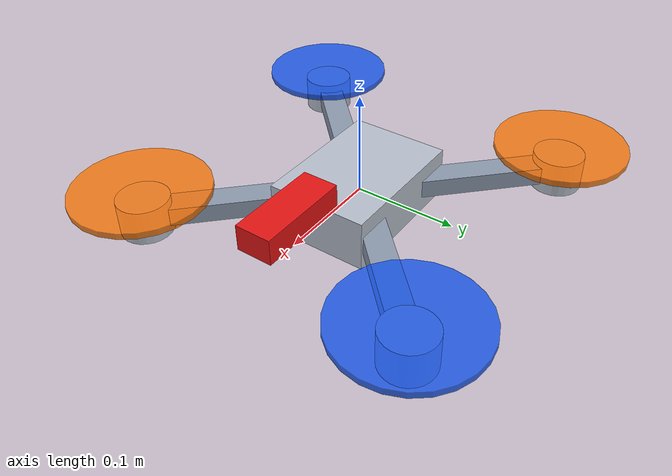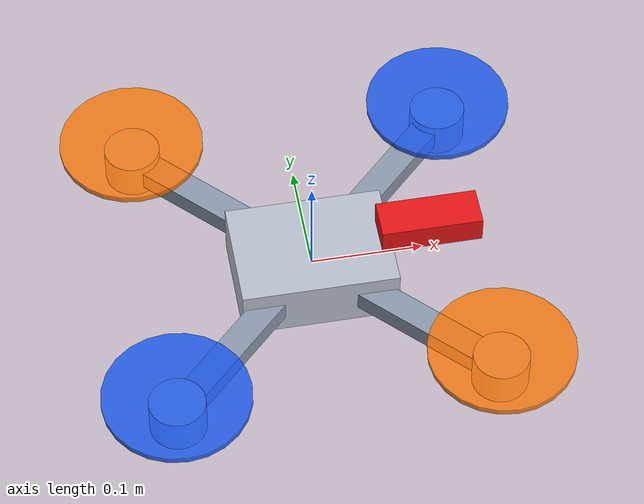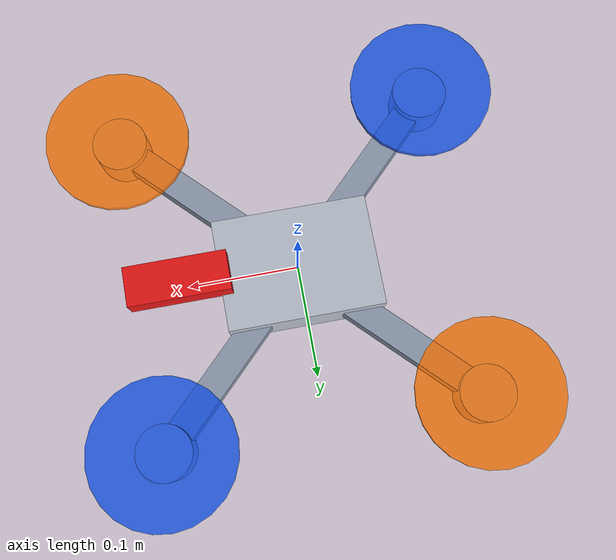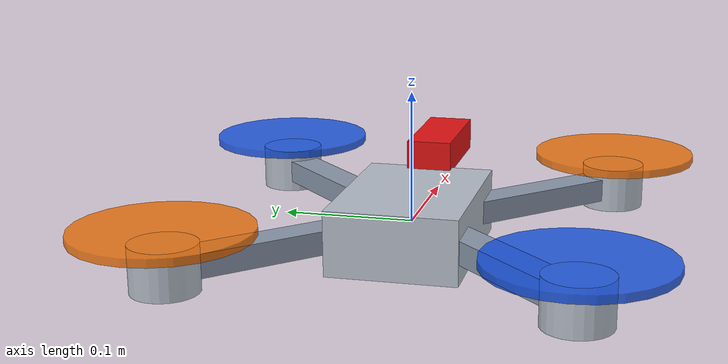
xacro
<?xml version="1.0"?>
<robot xmlns:xacro="http://www.ros.org/wiki/xacro" name="drone">
  <!-- Geometry follows the dynamics convention: base_link is FLU and motor centers
       are 0.20 m from the center in an X configuration. -->
  <xacro:property name="arm_length" value="0.20"/>
  <xacro:property name="motor_offset" value="${arm_length / sqrt(2.0)}"/>

  <material name="body_dark">
    <color rgba="0.72 0.75 0.80 1.0"/>
  </material>
  <material name="arm_gray">
    <color rgba="0.55 0.60 0.68 1.0"/>
  </material>
  <material name="front_red">
    <color rgba="0.90 0.08 0.08 1.0"/>
  </material>
  <material name="ccw_blue">
    <color rgba="0.10 0.35 0.95 0.85"/>
  </material>
  <material name="cw_orange">
    <color rgba="1.00 0.48 0.05 0.85"/>
  </material>

  <!-- Root link. robot_state_publisher publishes only fixed child transforms below
       this link; map -> base_link remains owned by quadrotor_dynamics_node. -->
  <link name="base_link">
    <visual>
      <geometry>
        <box size="0.14 0.10 0.05"/>
      </geometry>
      <material name="body_dark"/>
    </visual>
  </link>

  <!-- A bright marker extends along +x, making the nose direction obvious in RViz. -->
  <link name="front_marker_link">
    <visual>
      <geometry>
        <box size="0.09 0.035 0.025"/>
      </geometry>
      <material name="front_red"/>
    </visual>
  </link>
  <joint name="front_marker_joint" type="fixed">
    <parent link="base_link"/>
    <child link="front_marker_link"/>
    <origin xyz="0.105 0 0.035" rpy="0 0 0"/>
  </joint>

  <xacro:macro name="arm" params="name x y yaw">
    <link name="${name}_arm_link">
      <visual>
        <origin xyz="${x / 2.0} ${y / 2.0} 0" rpy="0 0 ${yaw}"/>
        <geometry>
          <box size="${arm_length} 0.025 0.018"/>
        </geometry>
        <material name="arm_gray"/>
      </visual>
    </link>
    <joint name="${name}_arm_joint" type="fixed">
      <parent link="base_link"/>
      <child link="${name}_arm_link"/>
      <origin xyz="0 0 0" rpy="0 0 0"/>
    </joint>
  </xacro:macro>

  <xacro:macro name="motor_and_rotor" params="name x y rotor_material">
    <link name="${name}_motor_link">
      <visual>
        <geometry>
          <cylinder radius="0.025" length="0.035"/>
        </geometry>
        <material name="body_dark"/>
      </visual>
    </link>
    <joint name="${name}_motor_joint" type="fixed">
      <parent link="base_link"/>
      <child link="${name}_motor_link"/>
      <origin xyz="${x} ${y} 0" rpy="0 0 0"/>
    </joint>

    <link name="${name}_rotor_link">
      <visual>
        <geometry>
          <cylinder radius="0.065" length="0.006"/>
        </geometry>
        <material name="${rotor_material}"/>
      </visual>
    </link>
    <joint name="${name}_rotor_joint" type="fixed">
      <parent link="${name}_motor_link"/>
      <child link="${name}_rotor_link"/>
      <origin xyz="0 0 0.025" rpy="0 0 0"/>
    </joint>
  </xacro:macro>

  <!-- M1 front-left CCW, M2 rear-left CW, M3 rear-right CCW, M4 front-right CW. -->
  <xacro:arm name="m1" x="${ motor_offset}" y="${ motor_offset}" yaw="${ pi / 4.0}"/>
  <xacro:arm name="m2" x="${-motor_offset}" y="${ motor_offset}" yaw="${3.0 * pi / 4.0}"/>
  <xacro:arm name="m3" x="${-motor_offset}" y="${-motor_offset}" yaw="${-3.0 * pi / 4.0}"/>
  <xacro:arm name="m4" x="${ motor_offset}" y="${-motor_offset}" yaw="${-pi / 4.0}"/>

  <xacro:motor_and_rotor name="m1" x="${ motor_offset}" y="${ motor_offset}"
    rotor_material="ccw_blue"/>
  <xacro:motor_and_rotor name="m2" x="${-motor_offset}" y="${ motor_offset}"
    rotor_material="cw_orange"/>
  <xacro:motor_and_rotor name="m3" x="${-motor_offset}" y="${-motor_offset}"
    rotor_material="ccw_blue"/>
  <xacro:motor_and_rotor name="m4" x="${ motor_offset}" y="${-motor_offset}"
    rotor_material="cw_orange"/>
</robot>
